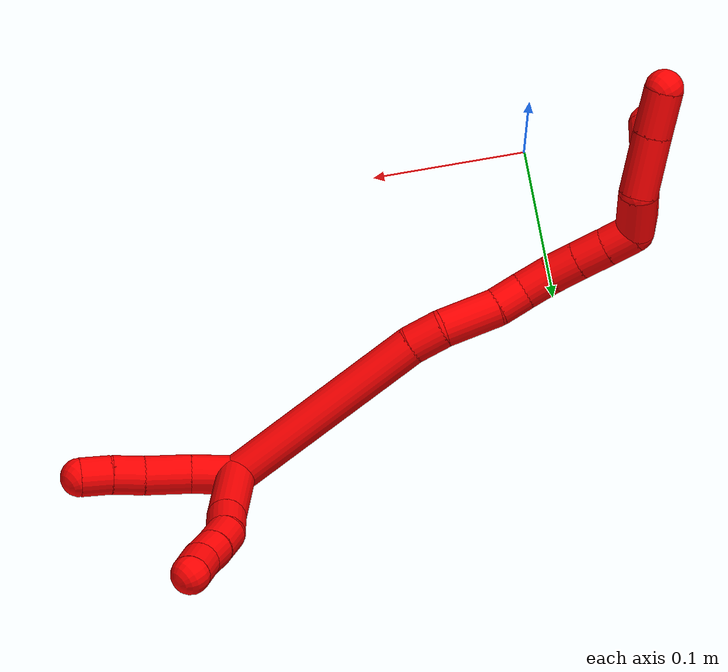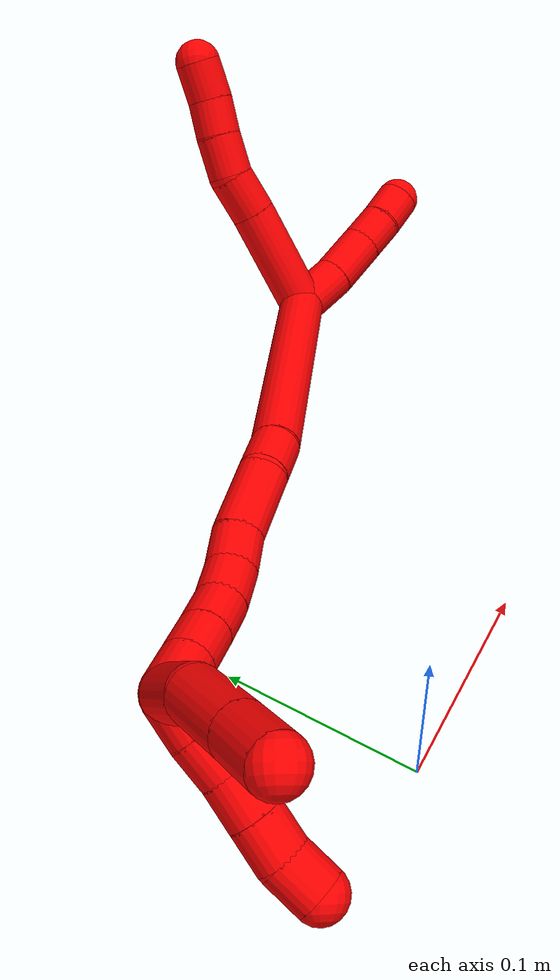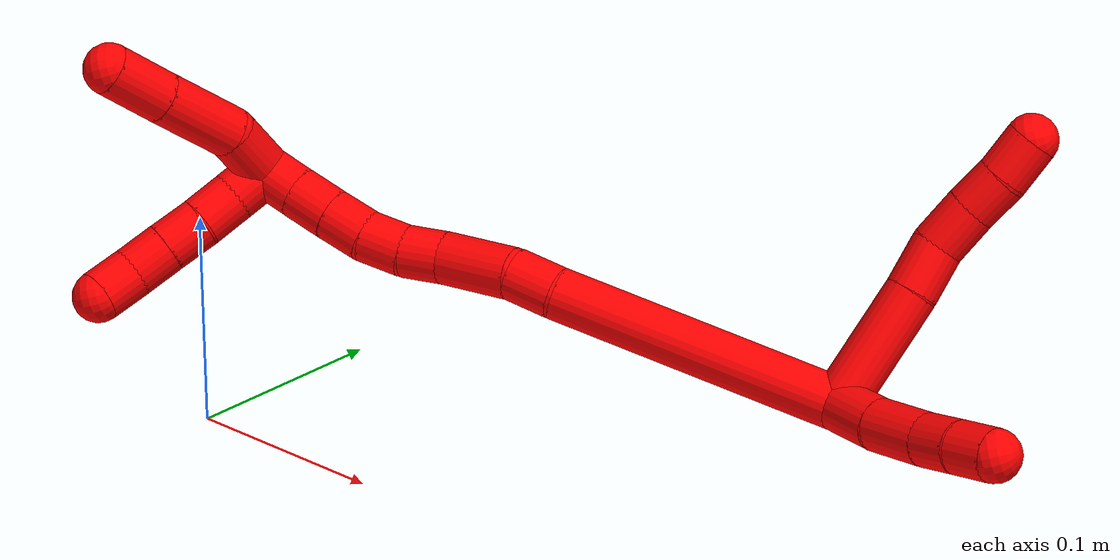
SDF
<sdf version="1.7">
 <world name="default">
  <model name="2">
   <static>0</static>
   <link name="2">
    <collision name="collision-cylinder-e_1_2_8">
     <pose>-0.021719 -0.000374 0.021316 0.017541 -0.794691 -0.007361</pose>
     <geometry><cylinder><radius>0.0125</radius><length>0.060867</length></cylinder></geometry>
     <surface>
      <friction><ode><mu>1.16</mu><mu2>1.16</mu2><slip1>0</slip1><slip2>0</slip2></ode></friction>
      <contact><ode><kp>1e+06</kp><kd>1</kd><max_vel>0</max_vel><min_depth>0.001</min_depth></ode></contact>
     </surface>
    </collision>
    <visual name="visual-cylinder-e_1_2_8">
     <pose>-0.021719 -0.000374 0.021316 0.017541 -0.794691 -0.007361</pose>
     <geometry><cylinder><radius>0.0125</radius><length>0.060867</length></cylinder></geometry>
     <material><ambient>1 0 0 1</ambient></material>
    </visual>
    <collision name="collision-cylinder-e_2_8_9">
     <pose>-0.052743 -0.000751 0.0504 0.000412 -0.875151 -0.000193</pose>
     <geometry><cylinder><radius>0.0125</radius><length>0.024243</length></cylinder></geometry>
     <surface>
      <friction><ode><mu>1.16</mu><mu2>1.16</mu2><slip1>0</slip1><slip2>0</slip2></ode></friction>
      <contact><ode><kp>1e+06</kp><kd>1</kd><max_vel>0</max_vel><min_depth>0.001</min_depth></ode></contact>
     </surface>
    </collision>
    <visual name="visual-cylinder-e_2_8_9">
     <pose>-0.052743 -0.000751 0.0504 0.000412 -0.875151 -0.000193</pose>
     <geometry><cylinder><radius>0.0125</radius><length>0.024243</length></cylinder></geometry>
     <material><ambient>1 0 0 1</ambient></material>
    </visual>
    <collision name="collision-cylinder-e_3_9_10">
     <pose>-0.068492 -0.002138 0.067681 0.144402 -0.5906 -0.043996</pose>
     <geometry><cylinder><radius>0.0125</radius><length>0.023147</length></cylinder></geometry>
     <surface>
      <friction><ode><mu>1.16</mu><mu2>1.16</mu2><slip1>0</slip1><slip2>0</slip2></ode></friction>
      <contact><ode><kp>1e+06</kp><kd>1</kd><max_vel>0</max_vel><min_depth>0.001</min_depth></ode></contact>
     </surface>
    </collision>
    <visual name="visual-cylinder-e_3_9_10">
     <pose>-0.068492 -0.002138 0.067681 0.144402 -0.5906 -0.043996</pose>
     <geometry><cylinder><radius>0.0125</radius><length>0.023147</length></cylinder></geometry>
     <material><ambient>1 0 0 1</ambient></material>
    </visual>
    <collision name="collision-cylinder-e_4_10_11">
     <pose>-0.079887 -0.005084 0.085869 0.178237 -0.511684 -0.046738</pose>
     <geometry><cylinder><radius>0.0125</radius><length>0.020219</length></cylinder></geometry>
     <surface>
      <friction><ode><mu>1.16</mu><mu2>1.16</mu2><slip1>0</slip1><slip2>0</slip2></ode></friction>
      <contact><ode><kp>1e+06</kp><kd>1</kd><max_vel>0</max_vel><min_depth>0.001</min_depth></ode></contact>
     </surface>
    </collision>
    <visual name="visual-cylinder-e_4_10_11">
     <pose>-0.079887 -0.005084 0.085869 0.178237 -0.511684 -0.046738</pose>
     <geometry><cylinder><radius>0.0125</radius><length>0.020219</length></cylinder></geometry>
     <material><ambient>1 0 0 1</ambient></material>
    </visual>
    <collision name="collision-cylinder-e_5_11_6">
     <pose>-0.091379 -0.00809 0.102966 0.169788 -0.653366 -0.057651</pose>
     <geometry><cylinder><radius>0.0125</radius><length>0.021525</length></cylinder></geometry>
     <surface>
      <friction><ode><mu>1.16</mu><mu2>1.16</mu2><slip1>0</slip1><slip2>0</slip2></ode></friction>
      <contact><ode><kp>1e+06</kp><kd>1</kd><max_vel>0</max_vel><min_depth>0.001</min_depth></ode></contact>
     </surface>
    </collision>
    <visual name="visual-cylinder-e_5_11_6">
     <pose>-0.091379 -0.00809 0.102966 0.169788 -0.653366 -0.057651</pose>
     <geometry><cylinder><radius>0.0125</radius><length>0.021525</length></cylinder></geometry>
     <material><ambient>1 0 0 1</ambient></material>
    </visual>
    <collision name="collision-cylinder-e_1_2_12">
     <pose>0.008397 -0.00577 0.010116 0.518348 0.624721 0.170826</pose>
     <geometry><cylinder><radius>0.0125</radius><length>0.028715</length></cylinder></geometry>
     <surface>
      <friction><ode><mu>1.16</mu><mu2>1.16</mu2><slip1>0</slip1><slip2>0</slip2></ode></friction>
      <contact><ode><kp>1e+06</kp><kd>1</kd><max_vel>0</max_vel><min_depth>0.001</min_depth></ode></contact>
     </surface>
    </collision>
    <visual name="visual-cylinder-e_1_2_12">
     <pose>0.008397 -0.00577 0.010116 0.518348 0.624721 0.170826</pose>
     <geometry><cylinder><radius>0.0125</radius><length>0.028715</length></cylinder></geometry>
     <material><ambient>1 0 0 1</ambient></material>
    </visual>
    <collision name="collision-cylinder-e_2_12_13">
     <pose>0.024194 -0.017343 0.032014 0.457663 0.51304 0.122033</pose>
     <geometry><cylinder><radius>0.0125</radius><length>0.030151</length></cylinder></geometry>
     <surface>
      <friction><ode><mu>1.16</mu><mu2>1.16</mu2><slip1>0</slip1><slip2>0</slip2></ode></friction>
      <contact><ode><kp>1e+06</kp><kd>1</kd><max_vel>0</max_vel><min_depth>0.001</min_depth></ode></contact>
     </surface>
    </collision>
    <visual name="visual-cylinder-e_2_12_13">
     <pose>0.024194 -0.017343 0.032014 0.457663 0.51304 0.122033</pose>
     <geometry><cylinder><radius>0.0125</radius><length>0.030151</length></cylinder></geometry>
     <material><ambient>1 0 0 1</ambient></material>
    </visual>
    <collision name="collision-cylinder-e_3_13_14">
     <pose>0.036095 -0.027955 0.051861 0.537742 0.447084 0.125121</pose>
     <geometry><cylinder><radius>0.0125</radius><length>0.020824</length></cylinder></geometry>
     <surface>
      <friction><ode><mu>1.16</mu><mu2>1.16</mu2><slip1>0</slip1><slip2>0</slip2></ode></friction>
      <contact><ode><kp>1e+06</kp><kd>1</kd><max_vel>0</max_vel><min_depth>0.001</min_depth></ode></contact>
     </surface>
    </collision>
    <visual name="visual-cylinder-e_3_13_14">
     <pose>0.036095 -0.027955 0.051861 0.537742 0.447084 0.125121</pose>
     <geometry><cylinder><radius>0.0125</radius><length>0.020824</length></cylinder></geometry>
     <material><ambient>1 0 0 1</ambient></material>
    </visual>
    <collision name="collision-cylinder-e_4_14_5">
     <pose>0.045119 -0.036442 0.06824 0.416386 0.46156 0.099194</pose>
     <geometry><cylinder><radius>0.0125</radius><length>0.020311</length></cylinder></geometry>
     <surface>
      <friction><ode><mu>1.16</mu><mu2>1.16</mu2><slip1>0</slip1><slip2>0</slip2></ode></friction>
      <contact><ode><kp>1e+06</kp><kd>1</kd><max_vel>0</max_vel><min_depth>0.001</min_depth></ode></contact>
     </surface>
    </collision>
    <visual name="visual-cylinder-e_4_14_5">
     <pose>0.045119 -0.036442 0.06824 0.416386 0.46156 0.099194</pose>
     <geometry><cylinder><radius>0.0125</radius><length>0.020311</length></cylinder></geometry>
     <material><ambient>1 0 0 1</ambient></material>
    </visual>
    <collision name="collision-cylinder-e_1_2_15">
     <pose>-0.035852 -0.017345 -0.057231 2.84732 -0.540065 -2.15839</pose>
     <geometry><cylinder><radius>0.0125</radius><length>0.139451</length></cylinder></geometry>
     <surface>
      <friction><ode><mu>1.16</mu><mu2>1.16</mu2><slip1>0</slip1><slip2>0</slip2></ode></friction>
      <contact><ode><kp>1e+06</kp><kd>1</kd><max_vel>0</max_vel><min_depth>0.001</min_depth></ode></contact>
     </surface>
    </collision>
    <visual name="visual-cylinder-e_1_2_15">
     <pose>-0.035852 -0.017345 -0.057231 2.84732 -0.540065 -2.15839</pose>
     <geometry><cylinder><radius>0.0125</radius><length>0.139451</length></cylinder></geometry>
     <material><ambient>1 0 0 1</ambient></material>
    </visual>
    <collision name="collision-cylinder-e_2_15_16">
     <pose>-0.078222 -0.03594 -0.123693 3.00704 -0.610501 -2.72026</pose>
     <geometry><cylinder><radius>0.0125</radius><length>0.022737</length></cylinder></geometry>
     <surface>
      <friction><ode><mu>1.16</mu><mu2>1.16</mu2><slip1>0</slip1><slip2>0</slip2></ode></friction>
      <contact><ode><kp>1e+06</kp><kd>1</kd><max_vel>0</max_vel><min_depth>0.001</min_depth></ode></contact>
     </surface>
    </collision>
    <visual name="visual-cylinder-e_2_15_16">
     <pose>-0.078222 -0.03594 -0.123693 3.00704 -0.610501 -2.72026</pose>
     <geometry><cylinder><radius>0.0125</radius><length>0.022737</length></cylinder></geometry>
     <material><ambient>1 0 0 1</ambient></material>
    </visual>
    <collision name="collision-cylinder-e_3_16_17">
     <pose>-0.092931 -0.035859 -0.149416 -3.0611 -0.459741 2.80078</pose>
     <geometry><cylinder><radius>0.0125</radius><length>0.036926</length></cylinder></geometry>
     <surface>
      <friction><ode><mu>1.16</mu><mu2>1.16</mu2><slip1>0</slip1><slip2>0</slip2></ode></friction>
      <contact><ode><kp>1e+06</kp><kd>1</kd><max_vel>0</max_vel><min_depth>0.001</min_depth></ode></contact>
     </surface>
    </collision>
    <visual name="visual-cylinder-e_3_16_17">
     <pose>-0.092931 -0.035859 -0.149416 -3.0611 -0.459741 2.80078</pose>
     <geometry><cylinder><radius>0.0125</radius><length>0.036926</length></cylinder></geometry>
     <material><ambient>1 0 0 1</ambient></material>
    </visual>
    <collision name="collision-cylinder-e_4_17_18">
     <pose>-0.104792 -0.035393 -0.175198 3.04887 -0.374626 -2.66145</pose>
     <geometry><cylinder><radius>0.0125</radius><length>0.020052</length></cylinder></geometry>
     <surface>
      <friction><ode><mu>1.16</mu><mu2>1.16</mu2><slip1>0</slip1><slip2>0</slip2></ode></friction>
      <contact><ode><kp>1e+06</kp><kd>1</kd><max_vel>0</max_vel><min_depth>0.001</min_depth></ode></contact>
     </surface>
    </collision>
    <visual name="visual-cylinder-e_4_17_18">
     <pose>-0.104792 -0.035393 -0.175198 3.04887 -0.374626 -2.66145</pose>
     <geometry><cylinder><radius>0.0125</radius><length>0.020052</length></cylinder></geometry>
     <material><ambient>1 0 0 1</ambient></material>
    </visual>
    <collision name="collision-cylinder-e_5_18_19">
     <pose>-0.113812 -0.037682 -0.193045 2.9765 -0.552776 -2.574</pose>
     <geometry><cylinder><radius>0.0125</radius><length>0.020383</length></cylinder></geometry>
     <surface>
      <friction><ode><mu>1.16</mu><mu2>1.16</mu2><slip1>0</slip1><slip2>0</slip2></ode></friction>
      <contact><ode><kp>1e+06</kp><kd>1</kd><max_vel>0</max_vel><min_depth>0.001</min_depth></ode></contact>
     </surface>
    </collision>
    <visual name="visual-cylinder-e_5_18_19">
     <pose>-0.113812 -0.037682 -0.193045 2.9765 -0.552776 -2.574</pose>
     <geometry><cylinder><radius>0.0125</radius><length>0.020383</length></cylinder></geometry>
     <material><ambient>1 0 0 1</ambient></material>
    </visual>
    <collision name="collision-cylinder-e_6_19_20">
     <pose>-0.125933 -0.040538 -0.209008 2.95081 -0.731347 -2.65185</pose>
     <geometry><cylinder><radius>0.0125</radius><length>0.020274</length></cylinder></geometry>
     <surface>
      <friction><ode><mu>1.16</mu><mu2>1.16</mu2><slip1>0</slip1><slip2>0</slip2></ode></friction>
      <contact><ode><kp>1e+06</kp><kd>1</kd><max_vel>0</max_vel><min_depth>0.001</min_depth></ode></contact>
     </surface>
    </collision>
    <visual name="visual-cylinder-e_6_19_20">
     <pose>-0.125933 -0.040538 -0.209008 2.95081 -0.731347 -2.65185</pose>
     <geometry><cylinder><radius>0.0125</radius><length>0.020274</length></cylinder></geometry>
     <material><ambient>1 0 0 1</ambient></material>
    </visual>
    <collision name="collision-cylinder-e_7_20_21">
     <pose>-0.139608 -0.043285 -0.223647 2.96162 -0.754139 -2.69355</pose>
     <geometry><cylinder><radius>0.0125</radius><length>0.020169</length></cylinder></geometry>
     <surface>
      <friction><ode><mu>1.16</mu><mu2>1.16</mu2><slip1>0</slip1><slip2>0</slip2></ode></friction>
      <contact><ode><kp>1e+06</kp><kd>1</kd><max_vel>0</max_vel><min_depth>0.001</min_depth></ode></contact>
     </surface>
    </collision>
    <visual name="visual-cylinder-e_7_20_21">
     <pose>-0.139608 -0.043285 -0.223647 2.96162 -0.754139 -2.69355</pose>
     <geometry><cylinder><radius>0.0125</radius><length>0.020169</length></cylinder></geometry>
     <material><ambient>1 0 0 1</ambient></material>
    </visual>
    <collision name="collision-cylinder-e_8_21_1">
     <pose>-0.153441 -0.046128 -0.237932 2.92835 -0.765004 -2.62159</pose>
     <geometry><cylinder><radius>0.0125</radius><length>0.020009</length></cylinder></geometry>
     <surface>
      <friction><ode><mu>1.16</mu><mu2>1.16</mu2><slip1>0</slip1><slip2>0</slip2></ode></friction>
      <contact><ode><kp>1e+06</kp><kd>1</kd><max_vel>0</max_vel><min_depth>0.001</min_depth></ode></contact>
     </surface>
    </collision>
    <visual name="visual-cylinder-e_8_21_1">
     <pose>-0.153441 -0.046128 -0.237932 2.92835 -0.765004 -2.62159</pose>
     <geometry><cylinder><radius>0.0125</radius><length>0.020009</length></cylinder></geometry>
     <material><ambient>1 0 0 1</ambient></material>
    </visual>
    <collision name="collision-cylinder-e_1_1_22">
     <pose>-0.166808 -0.060699 -0.247326 1.74831 -0.452247 -0.53674</pose>
     <geometry><cylinder><radius>0.0125</radius><length>0.029468</length></cylinder></geometry>
     <surface>
      <friction><ode><mu>1.16</mu><mu2>1.16</mu2><slip1>0</slip1><slip2>0</slip2></ode></friction>
      <contact><ode><kp>1e+06</kp><kd>1</kd><max_vel>0</max_vel><min_depth>0.001</min_depth></ode></contact>
     </surface>
    </collision>
    <visual name="visual-cylinder-e_1_1_22">
     <pose>-0.166808 -0.060699 -0.247326 1.74831 -0.452247 -0.53674</pose>
     <geometry><cylinder><radius>0.0125</radius><length>0.029468</length></cylinder></geometry>
     <material><ambient>1 0 0 1</ambient></material>
    </visual>
    <collision name="collision-cylinder-e_2_22_23">
     <pose>-0.179537 -0.090561 -0.258905 2.07314 -0.316789 -0.527417</pose>
     <geometry><cylinder><radius>0.0125</radius><length>0.040384</length></cylinder></geometry>
     <surface>
      <friction><ode><mu>1.16</mu><mu2>1.16</mu2><slip1>0</slip1><slip2>0</slip2></ode></friction>
      <contact><ode><kp>1e+06</kp><kd>1</kd><max_vel>0</max_vel><min_depth>0.001</min_depth></ode></contact>
     </surface>
    </collision>
    <visual name="visual-cylinder-e_2_22_23">
     <pose>-0.179537 -0.090561 -0.258905 2.07314 -0.316789 -0.527417</pose>
     <geometry><cylinder><radius>0.0125</radius><length>0.040384</length></cylinder></geometry>
     <material><ambient>1 0 0 1</ambient></material>
    </visual>
    <collision name="collision-cylinder-e_3_23_4">
     <pose>-0.190831 -0.119802 -0.275057 2.07861 -0.338423 -0.565605</pose>
     <geometry><cylinder><radius>0.0125</radius><length>0.030148</length></cylinder></geometry>
     <surface>
      <friction><ode><mu>1.16</mu><mu2>1.16</mu2><slip1>0</slip1><slip2>0</slip2></ode></friction>
      <contact><ode><kp>1e+06</kp><kd>1</kd><max_vel>0</max_vel><min_depth>0.001</min_depth></ode></contact>
     </surface>
    </collision>
    <visual name="visual-cylinder-e_3_23_4">
     <pose>-0.190831 -0.119802 -0.275057 2.07861 -0.338423 -0.565605</pose>
     <geometry><cylinder><radius>0.0125</radius><length>0.030148</length></cylinder></geometry>
     <material><ambient>1 0 0 1</ambient></material>
    </visual>
    <collision name="collision-cylinder-e_1_1_24">
     <pose>-0.155052 -0.050099 -0.253095 2.84881 0.560686 2.19502</pose>
     <geometry><cylinder><radius>0.0125</radius><length>0.02</length></cylinder></geometry>
     <surface>
      <friction><ode><mu>1.16</mu><mu2>1.16</mu2><slip1>0</slip1><slip2>0</slip2></ode></friction>
      <contact><ode><kp>1e+06</kp><kd>1</kd><max_vel>0</max_vel><min_depth>0.001</min_depth></ode></contact>
     </surface>
    </collision>
    <visual name="visual-cylinder-e_1_1_24">
     <pose>-0.155052 -0.050099 -0.253095 2.84881 0.560686 2.19502</pose>
     <geometry><cylinder><radius>0.0125</radius><length>0.02</length></cylinder></geometry>
     <material><ambient>1 0 0 1</ambient></material>
    </visual>
    <collision name="collision-cylinder-e_2_24_25">
     <pose>-0.144188 -0.055915 -0.268811 2.72446 0.587912 1.92132</pose>
     <geometry><cylinder><radius>0.0125</radius><length>0.02</length></cylinder></geometry>
     <surface>
      <friction><ode><mu>1.16</mu><mu2>1.16</mu2><slip1>0</slip1><slip2>0</slip2></ode></friction>
      <contact><ode><kp>1e+06</kp><kd>1</kd><max_vel>0</max_vel><min_depth>0.001</min_depth></ode></contact>
     </surface>
    </collision>
    <visual name="visual-cylinder-e_2_24_25">
     <pose>-0.144188 -0.055915 -0.268811 2.72446 0.587912 1.92132</pose>
     <geometry><cylinder><radius>0.0125</radius><length>0.02</length></cylinder></geometry>
     <material><ambient>1 0 0 1</ambient></material>
    </visual>
    <collision name="collision-cylinder-e_3_25_26">
     <pose>-0.133725 -0.062073 -0.284668 2.81576 0.514024 2.02382</pose>
     <geometry><cylinder><radius>0.0125</radius><length>0.02</length></cylinder></geometry>
     <surface>
      <friction><ode><mu>1.16</mu><mu2>1.16</mu2><slip1>0</slip1><slip2>0</slip2></ode></friction>
      <contact><ode><kp>1e+06</kp><kd>1</kd><max_vel>0</max_vel><min_depth>0.001</min_depth></ode></contact>
     </surface>
    </collision>
    <visual name="visual-cylinder-e_3_25_26">
     <pose>-0.133725 -0.062073 -0.284668 2.81576 0.514024 2.02382</pose>
     <geometry><cylinder><radius>0.0125</radius><length>0.02</length></cylinder></geometry>
     <material><ambient>1 0 0 1</ambient></material>
    </visual>
    <collision name="collision-cylinder-e_4_26_27">
     <pose>-0.123778 -0.067544 -0.301133 2.82589 0.527026 2.07552</pose>
     <geometry><cylinder><radius>0.0125</radius><length>0.02</length></cylinder></geometry>
     <surface>
      <friction><ode><mu>1.16</mu><mu2>1.16</mu2><slip1>0</slip1><slip2>0</slip2></ode></friction>
      <contact><ode><kp>1e+06</kp><kd>1</kd><max_vel>0</max_vel><min_depth>0.001</min_depth></ode></contact>
     </surface>
    </collision>
    <visual name="visual-cylinder-e_4_26_27">
     <pose>-0.123778 -0.067544 -0.301133 2.82589 0.527026 2.07552</pose>
     <geometry><cylinder><radius>0.0125</radius><length>0.02</length></cylinder></geometry>
     <material><ambient>1 0 0 1</ambient></material>
    </visual>
    <collision name="collision-cylinder-e_5_27_3">
     <pose>-0.113368 -0.074977 -0.316313 2.54299 0.568082 1.5154</pose>
     <geometry><cylinder><radius>0.0125</radius><length>0.02</length></cylinder></geometry>
     <surface>
      <friction><ode><mu>1.16</mu><mu2>1.16</mu2><slip1>0</slip1><slip2>0</slip2></ode></friction>
      <contact><ode><kp>1e+06</kp><kd>1</kd><max_vel>0</max_vel><min_depth>0.001</min_depth></ode></contact>
     </surface>
    </collision>
    <visual name="visual-cylinder-e_5_27_3">
     <pose>-0.113368 -0.074977 -0.316313 2.54299 0.568082 1.5154</pose>
     <geometry><cylinder><radius>0.0125</radius><length>0.02</length></cylinder></geometry>
     <material><ambient>1 0 0 1</ambient></material>
    </visual>
    <collision name="collision-sphere-3">
     <pose>-0.107988 -0.079727 -0.323276 0 -0 0</pose>
     <geometry><sphere><radius>0.0125</radius></sphere></geometry>
     <surface>
      <friction><ode><mu>1.16</mu><mu2>1.16</mu2><slip1>0</slip1><slip2>0</slip2></ode></friction>
      <contact><ode><kp>1e+06</kp><kd>1</kd><max_vel>0</max_vel><min_depth>0.001</min_depth></ode></contact>
     </surface>
    </collision>
    <visual name="visual-sphere-3">
     <pose>-0.107988 -0.079727 -0.323276 0 -0 0</pose>
     <geometry><sphere><radius>0.0125</radius></sphere></geometry>
     <material><ambient>1 0 0 1</ambient></material>
    </visual>
    <collision name="collision-sphere-27">
     <pose>-0.118749 -0.070228 -0.309349 0 -0 0</pose>
     <geometry><sphere><radius>0.0125</radius></sphere></geometry>
     <surface>
      <friction><ode><mu>1.16</mu><mu2>1.16</mu2><slip1>0</slip1><slip2>0</slip2></ode></friction>
      <contact><ode><kp>1e+06</kp><kd>1</kd><max_vel>0</max_vel><min_depth>0.001</min_depth></ode></contact>
     </surface>
    </collision>
    <visual name="visual-sphere-27">
     <pose>-0.118749 -0.070228 -0.309349 0 -0 0</pose>
     <geometry><sphere><radius>0.0125</radius></sphere></geometry>
     <material><ambient>1 0 0 1</ambient></material>
    </visual>
    <collision name="collision-sphere-26">
     <pose>-0.128808 -0.06486 -0.292917 0 -0 0</pose>
     <geometry><sphere><radius>0.0125</radius></sphere></geometry>
     <surface>
      <friction><ode><mu>1.16</mu><mu2>1.16</mu2><slip1>0</slip1><slip2>0</slip2></ode></friction>
      <contact><ode><kp>1e+06</kp><kd>1</kd><max_vel>0</max_vel><min_depth>0.001</min_depth></ode></contact>
     </surface>
    </collision>
    <visual name="visual-sphere-26">
     <pose>-0.128808 -0.06486 -0.292917 0 -0 0</pose>
     <geometry><sphere><radius>0.0125</radius></sphere></geometry>
     <material><ambient>1 0 0 1</ambient></material>
    </visual>
    <collision name="collision-sphere-25">
     <pose>-0.138642 -0.059286 -0.276418 0 -0 0</pose>
     <geometry><sphere><radius>0.0125</radius></sphere></geometry>
     <surface>
      <friction><ode><mu>1.16</mu><mu2>1.16</mu2><slip1>0</slip1><slip2>0</slip2></ode></friction>
      <contact><ode><kp>1e+06</kp><kd>1</kd><max_vel>0</max_vel><min_depth>0.001</min_depth></ode></contact>
     </surface>
    </collision>
    <visual name="visual-sphere-25">
     <pose>-0.138642 -0.059286 -0.276418 0 -0 0</pose>
     <geometry><sphere><radius>0.0125</radius></sphere></geometry>
     <material><ambient>1 0 0 1</ambient></material>
    </visual>
    <collision name="collision-sphere-24">
     <pose>-0.149734 -0.052544 -0.261203 0 -0 0</pose>
     <geometry><sphere><radius>0.0125</radius></sphere></geometry>
     <surface>
      <friction><ode><mu>1.16</mu><mu2>1.16</mu2><slip1>0</slip1><slip2>0</slip2></ode></friction>
      <contact><ode><kp>1e+06</kp><kd>1</kd><max_vel>0</max_vel><min_depth>0.001</min_depth></ode></contact>
     </surface>
    </collision>
    <visual name="visual-sphere-24">
     <pose>-0.149734 -0.052544 -0.261203 0 -0 0</pose>
     <geometry><sphere><radius>0.0125</radius></sphere></geometry>
     <material><ambient>1 0 0 1</ambient></material>
    </visual>
    <collision name="collision-sphere-4">
     <pose>-0.195836 -0.132227 -0.281972 0 -0 0</pose>
     <geometry><sphere><radius>0.0125</radius></sphere></geometry>
     <surface>
      <friction><ode><mu>1.16</mu><mu2>1.16</mu2><slip1>0</slip1><slip2>0</slip2></ode></friction>
      <contact><ode><kp>1e+06</kp><kd>1</kd><max_vel>0</max_vel><min_depth>0.001</min_depth></ode></contact>
     </surface>
    </collision>
    <visual name="visual-sphere-4">
     <pose>-0.195836 -0.132227 -0.281972 0 -0 0</pose>
     <geometry><sphere><radius>0.0125</radius></sphere></geometry>
     <material><ambient>1 0 0 1</ambient></material>
    </visual>
    <collision name="collision-sphere-23">
     <pose>-0.185827 -0.107378 -0.268143 0 -0 0</pose>
     <geometry><sphere><radius>0.0125</radius></sphere></geometry>
     <surface>
      <friction><ode><mu>1.16</mu><mu2>1.16</mu2><slip1>0</slip1><slip2>0</slip2></ode></friction>
      <contact><ode><kp>1e+06</kp><kd>1</kd><max_vel>0</max_vel><min_depth>0.001</min_depth></ode></contact>
     </surface>
    </collision>
    <visual name="visual-sphere-23">
     <pose>-0.185827 -0.107378 -0.268143 0 -0 0</pose>
     <geometry><sphere><radius>0.0125</radius></sphere></geometry>
     <material><ambient>1 0 0 1</ambient></material>
    </visual>
    <collision name="collision-sphere-22">
     <pose>-0.173246 -0.073744 -0.249666 0 -0 0</pose>
     <geometry><sphere><radius>0.0125</radius></sphere></geometry>
     <surface>
      <friction><ode><mu>1.16</mu><mu2>1.16</mu2><slip1>0</slip1><slip2>0</slip2></ode></friction>
      <contact><ode><kp>1e+06</kp><kd>1</kd><max_vel>0</max_vel><min_depth>0.001</min_depth></ode></contact>
     </surface>
    </collision>
    <visual name="visual-sphere-22">
     <pose>-0.173246 -0.073744 -0.249666 0 -0 0</pose>
     <geometry><sphere><radius>0.0125</radius></sphere></geometry>
     <material><ambient>1 0 0 1</ambient></material>
    </visual>
    <collision name="collision-sphere-1">
     <pose>-0.160369 -0.047655 -0.244986 0 -0 0</pose>
     <geometry><sphere><radius>0.0125</radius></sphere></geometry>
     <surface>
      <friction><ode><mu>1.16</mu><mu2>1.16</mu2><slip1>0</slip1><slip2>0</slip2></ode></friction>
      <contact><ode><kp>1e+06</kp><kd>1</kd><max_vel>0</max_vel><min_depth>0.001</min_depth></ode></contact>
     </surface>
    </collision>
    <visual name="visual-sphere-1">
     <pose>-0.160369 -0.047655 -0.244986 0 -0 0</pose>
     <geometry><sphere><radius>0.0125</radius></sphere></geometry>
     <material><ambient>1 0 0 1</ambient></material>
    </visual>
    <collision name="collision-sphere-21">
     <pose>-0.146512 -0.0446 -0.230879 0 -0 0</pose>
     <geometry><sphere><radius>0.0125</radius></sphere></geometry>
     <surface>
      <friction><ode><mu>1.16</mu><mu2>1.16</mu2><slip1>0</slip1><slip2>0</slip2></ode></friction>
      <contact><ode><kp>1e+06</kp><kd>1</kd><max_vel>0</max_vel><min_depth>0.001</min_depth></ode></contact>
     </surface>
    </collision>
    <visual name="visual-sphere-21">
     <pose>-0.146512 -0.0446 -0.230879 0 -0 0</pose>
     <geometry><sphere><radius>0.0125</radius></sphere></geometry>
     <material><ambient>1 0 0 1</ambient></material>
    </visual>
    <collision name="collision-sphere-6">
     <pose>-0.097921 -0.009534 0.111389 0 -0 0</pose>
     <geometry><sphere><radius>0.0125</radius></sphere></geometry>
     <surface>
      <friction><ode><mu>1.16</mu><mu2>1.16</mu2><slip1>0</slip1><slip2>0</slip2></ode></friction>
      <contact><ode><kp>1e+06</kp><kd>1</kd><max_vel>0</max_vel><min_depth>0.001</min_depth></ode></contact>
     </surface>
    </collision>
    <visual name="visual-sphere-6">
     <pose>-0.097921 -0.009534 0.111389 0 -0 0</pose>
     <geometry><sphere><radius>0.0125</radius></sphere></geometry>
     <material><ambient>1 0 0 1</ambient></material>
    </visual>
    <collision name="collision-sphere-11">
     <pose>-0.084837 -0.006646 0.094544 0 -0 0</pose>
     <geometry><sphere><radius>0.0125</radius></sphere></geometry>
     <surface>
      <friction><ode><mu>1.16</mu><mu2>1.16</mu2><slip1>0</slip1><slip2>0</slip2></ode></friction>
      <contact><ode><kp>1e+06</kp><kd>1</kd><max_vel>0</max_vel><min_depth>0.001</min_depth></ode></contact>
     </surface>
    </collision>
    <visual name="visual-sphere-11">
     <pose>-0.084837 -0.006646 0.094544 0 -0 0</pose>
     <geometry><sphere><radius>0.0125</radius></sphere></geometry>
     <material><ambient>1 0 0 1</ambient></material>
    </visual>
    <collision name="collision-sphere-10">
     <pose>-0.074937 -0.003521 0.077194 0 -0 0</pose>
     <geometry><sphere><radius>0.0125</radius></sphere></geometry>
     <surface>
      <friction><ode><mu>1.16</mu><mu2>1.16</mu2><slip1>0</slip1><slip2>0</slip2></ode></friction>
      <contact><ode><kp>1e+06</kp><kd>1</kd><max_vel>0</max_vel><min_depth>0.001</min_depth></ode></contact>
     </surface>
    </collision>
    <visual name="visual-sphere-10">
     <pose>-0.074937 -0.003521 0.077194 0 -0 0</pose>
     <geometry><sphere><radius>0.0125</radius></sphere></geometry>
     <material><ambient>1 0 0 1</ambient></material>
    </visual>
    <collision name="collision-sphere-9">
     <pose>-0.062047 -0.000754 0.058168 0 -0 0</pose>
     <geometry><sphere><radius>0.0125</radius></sphere></geometry>
     <surface>
      <friction><ode><mu>1.16</mu><mu2>1.16</mu2><slip1>0</slip1><slip2>0</slip2></ode></friction>
      <contact><ode><kp>1e+06</kp><kd>1</kd><max_vel>0</max_vel><min_depth>0.001</min_depth></ode></contact>
     </surface>
    </collision>
    <visual name="visual-sphere-9">
     <pose>-0.062047 -0.000754 0.058168 0 -0 0</pose>
     <geometry><sphere><radius>0.0125</radius></sphere></geometry>
     <material><ambient>1 0 0 1</ambient></material>
    </visual>
    <collision name="collision-sphere-2">
     <geometry><sphere><radius>0.0125</radius></sphere></geometry>
     <surface>
      <friction><ode><mu>1.16</mu><mu2>1.16</mu2><slip1>0</slip1><slip2>0</slip2></ode></friction>
      <contact><ode><kp>1e+06</kp><kd>1</kd><max_vel>0</max_vel><min_depth>0.001</min_depth></ode></contact>
     </surface>
    </collision>
    <visual name="visual-sphere-2">
     <geometry><sphere><radius>0.0125</radius></sphere></geometry>
     <material><ambient>1 0 0 1</ambient></material>
    </visual>
    <collision name="collision-sphere-19">
     <pose>-0.119163 -0.039108 -0.2016 0 -0 0</pose>
     <geometry><sphere><radius>0.0125</radius></sphere></geometry>
     <surface>
      <friction><ode><mu>1.16</mu><mu2>1.16</mu2><slip1>0</slip1><slip2>0</slip2></ode></friction>
      <contact><ode><kp>1e+06</kp><kd>1</kd><max_vel>0</max_vel><min_depth>0.001</min_depth></ode></contact>
     </surface>
    </collision>
    <visual name="visual-sphere-19">
     <pose>-0.119163 -0.039108 -0.2016 0 -0 0</pose>
     <geometry><sphere><radius>0.0125</radius></sphere></geometry>
     <material><ambient>1 0 0 1</ambient></material>
    </visual>
    <collision name="collision-sphere-8">
     <pose>-0.043438 -0.000748 0.042631 0 -0 0</pose>
     <geometry><sphere><radius>0.0125</radius></sphere></geometry>
     <surface>
      <friction><ode><mu>1.16</mu><mu2>1.16</mu2><slip1>0</slip1><slip2>0</slip2></ode></friction>
      <contact><ode><kp>1e+06</kp><kd>1</kd><max_vel>0</max_vel><min_depth>0.001</min_depth></ode></contact>
     </surface>
    </collision>
    <visual name="visual-sphere-8">
     <pose>-0.043438 -0.000748 0.042631 0 -0 0</pose>
     <geometry><sphere><radius>0.0125</radius></sphere></geometry>
     <material><ambient>1 0 0 1</ambient></material>
    </visual>
    <collision name="collision-sphere-12">
     <pose>0.016794 -0.011539 0.020232 0 -0 0</pose>
     <geometry><sphere><radius>0.0125</radius></sphere></geometry>
     <surface>
      <friction><ode><mu>1.16</mu><mu2>1.16</mu2><slip1>0</slip1><slip2>0</slip2></ode></friction>
      <contact><ode><kp>1e+06</kp><kd>1</kd><max_vel>0</max_vel><min_depth>0.001</min_depth></ode></contact>
     </surface>
    </collision>
    <visual name="visual-sphere-12">
     <pose>0.016794 -0.011539 0.020232 0 -0 0</pose>
     <geometry><sphere><radius>0.0125</radius></sphere></geometry>
     <material><ambient>1 0 0 1</ambient></material>
    </visual>
    <collision name="collision-sphere-13">
     <pose>0.031593 -0.023147 0.043797 0 -0 0</pose>
     <geometry><sphere><radius>0.0125</radius></sphere></geometry>
     <surface>
      <friction><ode><mu>1.16</mu><mu2>1.16</mu2><slip1>0</slip1><slip2>0</slip2></ode></friction>
      <contact><ode><kp>1e+06</kp><kd>1</kd><max_vel>0</max_vel><min_depth>0.001</min_depth></ode></contact>
     </surface>
    </collision>
    <visual name="visual-sphere-13">
     <pose>0.031593 -0.023147 0.043797 0 -0 0</pose>
     <geometry><sphere><radius>0.0125</radius></sphere></geometry>
     <material><ambient>1 0 0 1</ambient></material>
    </visual>
    <collision name="collision-sphere-14">
     <pose>0.040596 -0.032764 0.059924 0 -0 0</pose>
     <geometry><sphere><radius>0.0125</radius></sphere></geometry>
     <surface>
      <friction><ode><mu>1.16</mu><mu2>1.16</mu2><slip1>0</slip1><slip2>0</slip2></ode></friction>
      <contact><ode><kp>1e+06</kp><kd>1</kd><max_vel>0</max_vel><min_depth>0.001</min_depth></ode></contact>
     </surface>
    </collision>
    <visual name="visual-sphere-14">
     <pose>0.040596 -0.032764 0.059924 0 -0 0</pose>
     <geometry><sphere><radius>0.0125</radius></sphere></geometry>
     <material><ambient>1 0 0 1</ambient></material>
    </visual>
    <collision name="collision-sphere-5">
     <pose>0.049641 -0.040119 0.076556 0 -0 0</pose>
     <geometry><sphere><radius>0.0125</radius></sphere></geometry>
     <surface>
      <friction><ode><mu>1.16</mu><mu2>1.16</mu2><slip1>0</slip1><slip2>0</slip2></ode></friction>
      <contact><ode><kp>1e+06</kp><kd>1</kd><max_vel>0</max_vel><min_depth>0.001</min_depth></ode></contact>
     </surface>
    </collision>
    <visual name="visual-sphere-5">
     <pose>0.049641 -0.040119 0.076556 0 -0 0</pose>
     <geometry><sphere><radius>0.0125</radius></sphere></geometry>
     <material><ambient>1 0 0 1</ambient></material>
    </visual>
    <collision name="collision-sphere-15">
     <pose>-0.071704 -0.03469 -0.114462 0 -0 0</pose>
     <geometry><sphere><radius>0.0125</radius></sphere></geometry>
     <surface>
      <friction><ode><mu>1.16</mu><mu2>1.16</mu2><slip1>0</slip1><slip2>0</slip2></ode></friction>
      <contact><ode><kp>1e+06</kp><kd>1</kd><max_vel>0</max_vel><min_depth>0.001</min_depth></ode></contact>
     </surface>
    </collision>
    <visual name="visual-sphere-15">
     <pose>-0.071704 -0.03469 -0.114462 0 -0 0</pose>
     <geometry><sphere><radius>0.0125</radius></sphere></geometry>
     <material><ambient>1 0 0 1</ambient></material>
    </visual>
    <collision name="collision-sphere-16">
     <pose>-0.084739 -0.037189 -0.132923 0 -0 0</pose>
     <geometry><sphere><radius>0.0125</radius></sphere></geometry>
     <surface>
      <friction><ode><mu>1.16</mu><mu2>1.16</mu2><slip1>0</slip1><slip2>0</slip2></ode></friction>
      <contact><ode><kp>1e+06</kp><kd>1</kd><max_vel>0</max_vel><min_depth>0.001</min_depth></ode></contact>
     </surface>
    </collision>
    <visual name="visual-sphere-16">
     <pose>-0.084739 -0.037189 -0.132923 0 -0 0</pose>
     <geometry><sphere><radius>0.0125</radius></sphere></geometry>
     <material><ambient>1 0 0 1</ambient></material>
    </visual>
    <collision name="collision-sphere-17">
     <pose>-0.101123 -0.034529 -0.165908 0 -0 0</pose>
     <geometry><sphere><radius>0.0125</radius></sphere></geometry>
     <surface>
      <friction><ode><mu>1.16</mu><mu2>1.16</mu2><slip1>0</slip1><slip2>0</slip2></ode></friction>
      <contact><ode><kp>1e+06</kp><kd>1</kd><max_vel>0</max_vel><min_depth>0.001</min_depth></ode></contact>
     </surface>
    </collision>
    <visual name="visual-sphere-17">
     <pose>-0.101123 -0.034529 -0.165908 0 -0 0</pose>
     <geometry><sphere><radius>0.0125</radius></sphere></geometry>
     <material><ambient>1 0 0 1</ambient></material>
    </visual>
    <collision name="collision-sphere-18">
     <pose>-0.108461 -0.036257 -0.184489 0 -0 0</pose>
     <geometry><sphere><radius>0.0125</radius></sphere></geometry>
     <surface>
      <friction><ode><mu>1.16</mu><mu2>1.16</mu2><slip1>0</slip1><slip2>0</slip2></ode></friction>
      <contact><ode><kp>1e+06</kp><kd>1</kd><max_vel>0</max_vel><min_depth>0.001</min_depth></ode></contact>
     </surface>
    </collision>
    <visual name="visual-sphere-18">
     <pose>-0.108461 -0.036257 -0.184489 0 -0 0</pose>
     <geometry><sphere><radius>0.0125</radius></sphere></geometry>
     <material><ambient>1 0 0 1</ambient></material>
    </visual>
    <collision name="collision-sphere-20">
     <pose>-0.132703 -0.041969 -0.216416 0 -0 0</pose>
     <geometry><sphere><radius>0.0125</radius></sphere></geometry>
     <surface>
      <friction><ode><mu>1.16</mu><mu2>1.16</mu2><slip1>0</slip1><slip2>0</slip2></ode></friction>
      <contact><ode><kp>1e+06</kp><kd>1</kd><max_vel>0</max_vel><min_depth>0.001</min_depth></ode></contact>
     </surface>
    </collision>
    <visual name="visual-sphere-20">
     <pose>-0.132703 -0.041969 -0.216416 0 -0 0</pose>
     <geometry><sphere><radius>0.0125</radius></sphere></geometry>
     <material><ambient>1 0 0 1</ambient></material>
    </visual>
    <inertial>
     <pose>-0.079361 -0.035072 -0.106699 0 -0 0</pose>
     <mass>0.75</mass>
     <inertia><ixx>-0.000266</ixx><ixy>0</ixy><ixz>0</ixz><iyy>2e-05</iyy><iyz>0</iyz><izz>0.000206</izz></inertia>
    </inertial>
   </link>
   <pose>0.221835 0.184449 0.012765 -1.0669 0.838549 -0.634493</pose>
  </model>
 </world>
</sdf>
